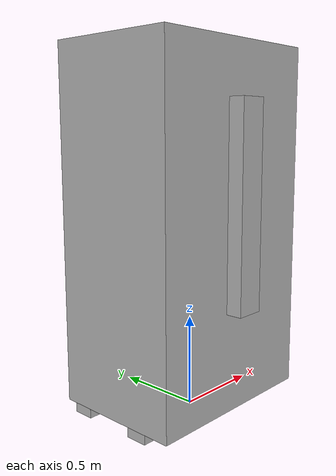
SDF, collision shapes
<?xml version="1.0" ?>
<sdf version="1.6">
  <model name="aws_robomaker_residential_Refrigerator_01">
    <link name="link">
      <inertial>
        <mass>1</mass>
      </inertial>
      <collision name="aws_refrigerator_01_collision_collider_box">
        <pose>0.000483 0.05069 1.013312 1.570796 -0.0 0.0</pose>
        <geometry>
          <box>
            <size>1.044368 1.894467 0.736233</size>
          </box>
        </geometry>
      </collision>
      <collision name="aws_refrigerator_01_collision_collider_box.001">
        <pose>0.000483 -0.323412 1.138131 1.570796 -0.0 0.0</pose>
        <geometry>
          <box>
            <size>0.157568 1.08116 0.161295</size>
          </box>
        </geometry>
      </collision>
      <collision name="aws_refrigerator_01_collision_collider_box.002">
        <pose>-0.441326 -0.09046 0.038571 1.570796 -0.0 0.0</pose>
        <geometry>
          <box>
            <size>0.123006 0.077142 0.120046</size>
          </box>
        </geometry>
      </collision>
      <collision name="aws_refrigerator_01_collision_collider_box.003">
        <pose>0.42751 -0.09046 0.038571 1.570796 -0.0 0.0</pose>
        <geometry>
          <box>
            <size>0.123006 0.077142 0.120046</size>
          </box>
        </geometry>
      </collision>
      <collision name="aws_refrigerator_01_collision_collider_box.004">
        <pose>-0.441326 0.322792 0.038571 1.570796 -0.0 0.0</pose>
        <geometry>
          <box>
            <size>0.123006 0.077142 0.120046</size>
          </box>
        </geometry>
      </collision>
      <collision name="aws_refrigerator_01_collision_collider_box.005">
        <pose>0.42751 0.322792 0.038571 1.570796 -0.0 0.0</pose>
        <geometry>
          <box>
            <size>0.123006 0.077142 0.120046</size>
          </box>
        </geometry>
      </collision>
      <visual name="visual">
        <geometry>
          <mesh>
            <uri>model://aws_robomaker_residential_Refrigerator_01/meshes/aws_Refrigerator_01_visual.DAE</uri>
          </mesh>
        </geometry>
        <meta> <layer> 1 </layer></meta>
    </visual>
    </link>
    <static>1</static>
  </model>
</sdf>
